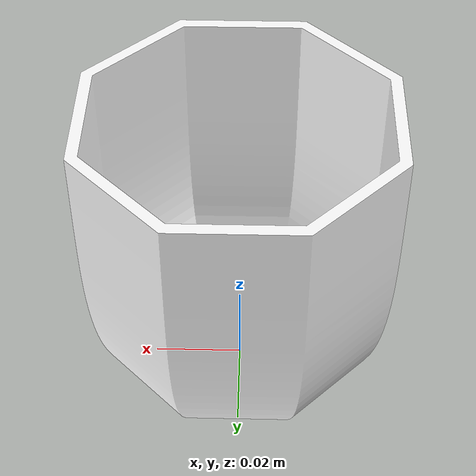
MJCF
<mujoco model="teacup">
    <compiler angle="radian"/>

  <asset>
    <material name="teacup" specular="1" shininess="1"/>
    <mesh file="teacup.obj" scale=".8 .8 .8"/>
    <material name="floor" reflectance=".1"/>
  </asset>

  <default>
    <default class="teacup">
      <default class="visual">
        <geom group="2" contype="0" conaffinity="0"/>
      </default>
      <default class="collision">
        <geom group="3" condim="3" margin="0.001"/>
        <default class="teacup_collision">
          <geom group="3" condim="3" margin="0.001" type="box" size="0.0026 0.00704 0.033"/>
        </default>
      </default>
    </default>
  </default>

  <worldbody>
    <body name="teacup_body" childclass="teacup">
        <freejoint name="teacup_joint"/>
        <!-- python assets/objects/handover_hole/ring_xml.py --radius .032 --segments 8 --half-thickness 0.002 --half-height 0.0325 --z 0.04-->
        <geom class="visual" type="mesh" mesh="teacup" material="teacup" euler="0 0 0.392" contype="0" conaffinity="0"/>
        <geom class="collision" type="cylinder" size=".03 .005" pos="0 0 0.005"/>
        <geom type="box" class="collision" pos="0.032 0 0.04" euler="0 0 0" size="0.002 0.014365 0.0325"/>
        <geom type="box" class="collision" pos="0.022627 0.022627 0.04" euler="0 0 0.785398" size="0.002 0.014365 0.0325"/>
        <geom type="box" class="collision" pos="0 0.032 0.04" euler="0 0 1.570796" size="0.002 0.014365 0.0325"/>
        <geom type="box" class="collision" pos="-0.022627 0.022627 0.04" euler="0 0 2.356194" size="0.002 0.014365 0.0325"/>
        <geom type="box" class="collision" pos="-0.032 0 0.04" euler="0 0 3.141593" size="0.002 0.014365 0.0325"/>
        <geom type="box" class="collision" pos="-0.022627 -0.022627 0.04" euler="0 0 3.926991" size="0.002 0.014365 0.0325"/>
        <geom type="box" class="collision" pos="0 -0.032 0.04" euler="0 0 4.712389" size="0.002 0.014365 0.0325"/>
        <geom type="box" class="collision" pos="0.022627 -0.022627 0.04" euler="0 0 5.497787" size="0.002 0.014365 0.0325"/>

    </body>
  </worldbody>
</mujoco>
